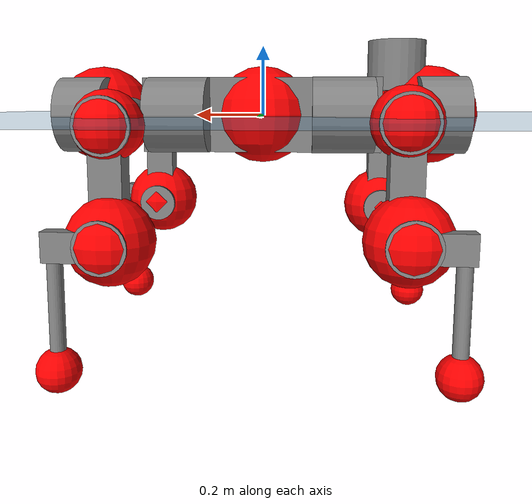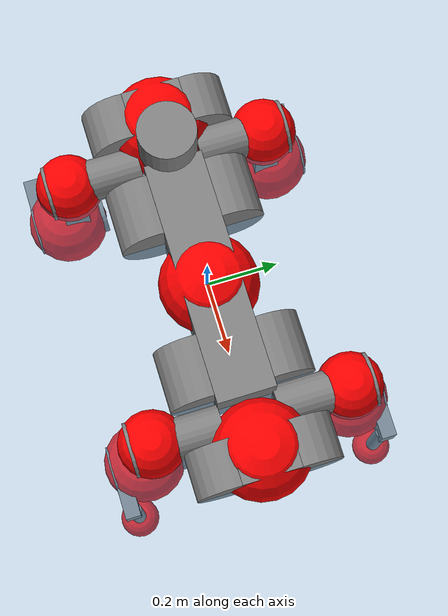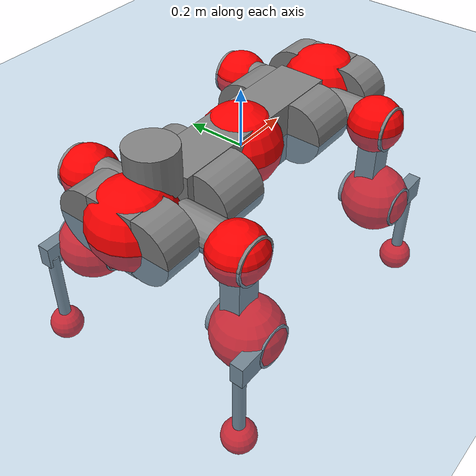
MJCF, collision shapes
<mujoco model="anymal_c">
  <compiler angle="radian" assetdir="assets" balanceinertia="true" inertiafromgeom="false"/>

  <option timestep="0.005" density="1.2" viscosity="2e-05"/>

  <size nkey="1"/>

  <visual>
    <quality shadowsize="8192"/>
    <map shadowclip="0.5"/>
  </visual>

  <default>
    <default class="/">
      <material specular="0" shininess="0.25"/>
      <geom contype="0" conaffinity="0" group="1" solref="-1000 -80"/>
      <site size="0.01 0.005 0.005" group="5"/>
      <general forcelimited="true" forcerange="-80 80" biastype="affine" gainprm="80" biasprm="0 -80 -2"/>
      <default class="anymal_c">
        <joint armature="0.01" damping="0.01" frictionloss="0.1"/>
        <default class="visual">
          <geom type="mesh" group="2"/>
          <default class="visual_zflip"/>
        </default>
        <default class="collision">
          <geom type="cylinder" group="3"/>
          <default class="foot">
            <geom size="0.03 0 0" type="sphere" condim="6" priority="1" friction="0.8 0.02 0.01" solimp="0.015 1 0.03"/>
          </default>
        </default>
      </default>
      <default class="reward_collision_sphere">
        <geom group="5" rgba="1 0 0 1"/>
      </default>
    </default>
  </default>

  <asset>
    <texture type="skybox" colorspace="auto" name="//unnamed_texture_0" builtin="gradient" rgb1="0.95 0.95 0.95" rgb2="0.95 0.95 0.95" width="100" height="600"/>
    <texture type="2d" colorspace="auto" name="texplane" builtin="checker" rgb1="0.345 0.575 0.748" rgb2="0.345 0.575 0.748" markrgb="1 1 1" width="512" height="512"/>
    <texture type="2d" colorspace="linear" name="base" file="base.png"/>
    <texture type="2d" colorspace="linear" name="top_shell" file="top_shell.png"/>
    <texture type="2d" colorspace="linear" name="bottom_shell" file="bottom_shell.png"/>
    <texture type="2d" colorspace="linear" name="remote" file="remote.png"/>
    <texture type="2d" colorspace="linear" name="hatch" file="hatch.png"/>
    <texture type="2d" colorspace="linear" name="handle" file="handle.png"/>
    <texture type="2d" colorspace="linear" name="face" file="face.png"/>
    <texture type="2d" colorspace="linear" name="battery" file="battery.png"/>
    <texture type="2d" colorspace="linear" name="lidar_cage" file="lidar_cage.png"/>
    <texture type="2d" colorspace="linear" name="depth_camera" file="depth_camera.png"/>
    <texture type="2d" colorspace="linear" name="wide_angle_camera" file="wide_angle_camera.png"/>
    <texture type="2d" colorspace="linear" name="lidar" file="lidar.png"/>
    <texture type="2d" colorspace="linear" name="drive" file="drive.png"/>
    <texture type="2d" colorspace="linear" name="hip_l" file="hip_l.png"/>
    <texture type="2d" colorspace="linear" name="shank_l" file="shank_l.png"/>
    <texture type="2d" colorspace="linear" name="foot" file="foot.png"/>
    <texture type="2d" colorspace="linear" name="thigh" file="thigh.png"/>
    <texture type="2d" colorspace="linear" name="shank_r" file="shank_r.png"/>
    <texture type="2d" colorspace="linear" name="hip_r" file="hip_r.png"/>
    <material name="MatPlane" class="/" texture="texplane" texuniform="true" texrepeat="2 2" specular="0.9" shininess="0.5"/>
    <material name="black_plastic" class="/" rgba="0.007 0.007 0.007 1"/>
    <material name="green" class="/" rgba="0.052 0.178 0.033 1"/>
    <material name="red" class="/" rgba="0.178 0.006 0.005 1"/>
    <material name="yellow" class="/" rgba="0.178 0.119 0.006 1"/>
    <material name="lwl" class="/" rgba="0.8 0.8 0.8 1"/>
    <material name="base" class="/" texture="base"/>
    <material name="top_shell" class="/" texture="top_shell"/>
    <material name="bottom_shell" class="/" texture="bottom_shell"/>
    <material name="hip_l" class="/" texture="hip_l"/>
    <material name="thigh" class="/" texture="thigh"/>
    <material name="shank_l" class="/" texture="shank_l"/>
    <material name="foot" class="/" texture="foot"/>
    <material name="hip_r" class="/" texture="hip_r"/>
    <material name="shank" class="/" texture="shank_r"/>
    <material name="hatch" class="/" texture="hatch"/>
    <material name="remote" class="/" texture="remote"/>
    <material name="handle" class="/" texture="handle"/>
    <material name="face" class="/" texture="face"/>
    <material name="depth_camera" class="/" texture="depth_camera"/>
    <material name="wide_angle_camera" class="/" texture="wide_angle_camera"/>
    <material name="battery" class="/" texture="battery"/>
    <material name="lidar_cage" class="/" texture="lidar_cage"/>
    <material name="lidar" class="/" texture="lidar"/>
    <material name="drive" class="/" texture="drive"/>
    <mesh name="base_0" class="/" file="base_0.obj"/>
    <mesh name="base_1" class="/" file="base_1.obj"/>
    <mesh name="base_2" class="/" file="base_2.obj"/>
    <mesh name="base_3" class="/" file="base_3.obj"/>
    <mesh name="base_4" class="/" file="base_4.obj"/>
    <mesh name="base_5" class="/" file="base_5.obj"/>
    <mesh name="top_shell" class="/" file="top_shell.obj"/>
    <mesh name="bottom_shell" class="/" file="bottom_shell.obj"/>
    <mesh name="remote" class="/" file="remote.obj"/>
    <mesh name="handle" class="/" file="handle.obj"/>
    <mesh name="face" class="/" file="face.obj"/>
    <mesh name="wide_angle_camera" class="/" file="wide_angle_camera.obj"/>
    <mesh name="depth_camera" class="/" file="depth_camera.obj"/>
    <mesh name="battery" class="/" file="battery.obj"/>
    <mesh name="lidar_cage" class="/" file="lidar_cage.obj"/>
    <mesh name="lidar" class="/" file="lidar.obj"/>
    <mesh name="drive" class="/" file="drive.obj"/>
    <mesh name="hip_l" class="/" file="hip_l.obj"/>
    <mesh name="thigh" class="/" file="thigh.obj"/>
    <mesh name="shank_l" class="/" file="shank_l.obj"/>
    <mesh name="foot" class="/" file="foot.obj"/>
    <mesh name="hip_r" class="/" file="hip_r.obj"/>
    <mesh name="hatch" class="/" file="hatch.obj"/>
    <mesh name="shank_r" class="/" file="shank_r.obj"/>
  </asset>

  <worldbody>
    <geom name="floor" class="/" size="100 100 0.125" type="plane" group="0" material="MatPlane"/>
    <light name="toplight_shadow" class="/" pos="0 0 5" dir="0.0990148 0.0990148 -0.990148" type="directional" ambient="0.04 0.04 0.04" diffuse="0.55 0.55 0.55" specular="0.12 0.12 0.12"/>
    <light name="toplight_fill" class="/" pos="0 0 5" dir="0.0990148 0.0990148 -0.990148" type="directional" castshadow="false" ambient="0.04 0.04 0.04" diffuse="0.3 0.3 0.3" specular="0.08 0.08 0.08"/>
    <body name="trunk" childclass="anymal_c" pos="-0.000100737 0.00528434 0.00203989" quat="1 0.000115501 -9.34751e-05 -1.29896e-05">
      <inertial pos="0.00285306 0.00601392 0.0482973" quat="0.458074 0.52238 0.510391 0.506743" mass="31.5833" diaginertia="0.874637 3.50088 0.268788"/>
      <joint name="//unnamed_joint_0" type="free" armature="0" damping="0" frictionloss="0"/>
      <geom name="//unnamed_geom_1" class="visual" material="green" mesh="base_0"/>
      <geom name="//unnamed_geom_2" class="visual" material="yellow" mesh="base_1"/>
      <geom name="//unnamed_geom_3" class="visual" material="red" mesh="base_2"/>
      <geom name="//unnamed_geom_4" class="visual" material="black_plastic" mesh="base_3"/>
      <geom name="//unnamed_geom_5" class="visual" material="lwl" mesh="base_4"/>
      <geom name="//unnamed_geom_6" class="visual" material="base" mesh="base_5"/>
      <geom name="trunk_1" class="collision" size="0.340126 0.0820994 0.105556" type="box"/>
      <geom name="trunk_2" class="collision" size="0.105556 0.0850315" pos="0.23055 0.0991597 0" quat="0.707107 0 0.707107 0"/>
      <geom name="trunk_3" class="collision" size="0.105556 0.0850315" pos="-0.23055 0.0991597 0" quat="0.707107 0 0.707107 0"/>
      <geom name="trunk_4" class="collision" size="0.105556 0.0850315" pos="0.23055 -0.0991597 0" quat="0.707107 0 0.707107 0"/>
      <geom name="trunk_5" class="collision" size="0.105556 0.0850315" pos="-0.23055 -0.0991597 0" quat="0.707107 0 0.707107 0"/>
      <geom name="//unnamed_geom_12" class="visual" material="top_shell" mesh="top_shell"/>
      <geom name="//unnamed_geom_13" class="visual" material="bottom_shell" mesh="bottom_shell"/>
      <geom name="//unnamed_geom_14" class="visual" material="remote" mesh="remote"/>
      <geom name="//unnamed_geom_15" class="visual" material="handle" mesh="handle"/>
      <geom name="//unnamed_geom_16" class="visual" pos="0.43937 0 0" quat="1 0 0 0" material="face" mesh="face"/>
      <geom name="trunk_6" class="collision" size="0.0645066 0.0820994 0.105556" pos="0.49767 0 0" type="box"/>
      <geom name="//unnamed_geom_18" class="collision" size="0.105556 0.0645066" pos="0.49767 0.0991597 0" quat="0.707107 0 0.707107 0"/>
      <geom name="//unnamed_geom_19" class="collision" size="0.105556 0.0645066" pos="0.49767 -0.0991597 0" quat="0.707107 0 0.707107 0"/>
      <geom name="//unnamed_geom_20" class="visual" pos="0.489348 0 -0.0302888" quat="0.965926 0 0.258819 0" material="depth_camera" mesh="depth_camera"/>
      <geom name="//unnamed_geom_21" class="visual" pos="0.54378 0 0.0155984" material="wide_angle_camera" mesh="wide_angle_camera"/>
      <geom name="//unnamed_geom_22" class="visual_zflip" pos="-0.43937 0 0" quat="0 0 0 1" material="face" mesh="face"/>
      <geom name="trunk_7" class="collision" size="0.0645066 0.0820994 0.105556" pos="-0.49767 0 0" quat="0 0 0 1" type="box"/>
      <geom name="//unnamed_geom_24" class="collision" size="0.105556 0.0645066" pos="-0.49767 -0.0991597 0" quat="0 -0.707107 0 0.707107"/>
      <geom name="//unnamed_geom_25" class="collision" size="0.105556 0.0645066" pos="-0.49767 0.0991597 0" quat="0 -0.707107 0 0.707107"/>
      <geom name="//unnamed_geom_26" class="visual" pos="-0.489348 0 -0.0302888" quat="0 -0.258819 0 0.965926" material="depth_camera" mesh="depth_camera"/>
      <geom name="//unnamed_geom_27" class="visual_zflip" pos="-0.54378 0 0.0155984" quat="0 0 0 1" material="wide_angle_camera" mesh="wide_angle_camera"/>
      <geom name="//unnamed_geom_28" class="visual" material="battery" mesh="battery"/>
      <geom name="//unnamed_geom_29" class="visual" pos="0 0.112989 0.0304064" quat="0.683013 -0.183013 0.183013 0.683013" material="depth_camera" mesh="depth_camera"/>
      <geom name="//unnamed_geom_30" class="visual" pos="0 -0.112989 0.0304064" quat="0.683013 0.183013 0.183013 -0.683013" material="depth_camera" mesh="depth_camera"/>
      <geom name="//unnamed_geom_31" class="visual" pos="-0.38584 0 0.0765853" quat="1 0 0 0" material="lidar_cage" mesh="lidar_cage"/>
      <geom name="trunk_8" class="collision" size="0.0820994 0.0703709" pos="-0.38584 0 0.139104"/>
      <geom name="//unnamed_geom_33" class="visual" pos="-0.38584 0.000140086 0.148169" quat="0.707107 0 0 -0.707107" material="lidar" mesh="lidar"/>
      <geom name="//unnamed_geom_34" class="visual" pos="0.317894 0.14719 6.46172e-09" quat="0.258819 0.965926 0 0" material="drive" mesh="drive"/>
      <geom name="//unnamed_geom_35" class="visual" pos="0.317894 -0.14719 -6.46172e-09" quat="0.258819 -0.965926 0 0" material="drive" mesh="drive"/>
      <geom name="//unnamed_geom_36" class="visual" pos="-0.317894 0.14719 -6.46172e-09" quat="0 0 0.965926 -0.258819" material="drive" mesh="drive"/>
      <geom name="//unnamed_geom_37" class="visual" pos="-0.317894 -0.14719 6.46172e-09" quat="0 0 -0.965926 -0.258819" material="drive" mesh="drive"/>
      <geom name="//unnamed_geom_38" class="visual" pos="0.12296 0 0.0760643" quat="1 0 0 0" material="hatch" mesh="hatch"/>
      <geom name="//unnamed_geom_39" class="reward_collision_sphere" size="0.140742"/>
      <geom name="//unnamed_geom_40" class="reward_collision_sphere" size="0.140742" pos="0.477 0 0"/>
      <geom name="//unnamed_geom_41" class="reward_collision_sphere" size="0.140742" pos="-0.477 0 0"/>
      <site name="imu" pos="0.238921 -0.00172638 0.0745666" size="0.0117285"/>
      <camera name="track" pos="0 -2.83313 0" quat="0.707107 0.707107 0 0" mode="trackcom"/>
      <camera name="ego_camera" pos="0.477 0 -0.0416791" quat="-0.5 -0.5 0.5 0.5"/>
      <body name="LF_HIP" pos="0.314155 0.137934 -0.00731206" quat="0.257903 0.966167 -0.00164896 0.00210423">
        <inertial pos="0.0583837 -0.0210086 -0.010534" quat="-0.130299 0.713395 -0.142409 0.673653" mass="4.68727" diaginertia="0.00782091 0.0304556 0.0039545"/>
        <joint name="LF_HAA" pos="0 0 0" axis="0.999988 2.30951e-05 0.00488791" range="-0.913921 0.444087" armature="0.0108429" damping="0.0332757" frictionloss="0.0942522"/>
        <geom name="//unnamed_geom_42" class="visual" pos="0 0.000380114 -6.24334e-05" quat="0.258819 -0.965926 0 0" material="hip_l" mesh="hip_l"/>
        <geom name="//unnamed_geom_43" class="visual" pos="0.063494 -0.0814982 -0.0442823" quat="0.183013 -0.683013 0.683013 0.183013" material="drive" mesh="drive"/>
        <geom name="//unnamed_geom_44" class="collision" size="0.0586424 0.0820994" pos="0.063494 -0.0169419 -0.00719485" quat="-0.353553 -0.612372 0.612372 -0.353553"/>
        <body name="LF_THIGH" pos="0.0639275 -0.112326 -0.0444113" quat="0.184184 -0.683012 0.682236 0.18473">
          <inertial pos="0.0282828 -0.00305082 -0.254298" quat="0.994045 -0.0211297 -0.0528481 0.0929227" mass="4.94633" diaginertia="0.042425 0.172894 0.0052362"/>
          <joint name="LF_HFE" pos="0 0 0" axis="0.999619 -0.0263542 -0.00820009" stiffness="0.0208746" range="-3.17443 2.98335" armature="0.00829059" damping="0.0202197" frictionloss="0.114223"/>
          <geom name="//unnamed_geom_45" class="visual" pos="-0.00709428 -1.11789e-05 0" quat="0.707107 0 0 -0.707107" material="thigh" mesh="thigh"/>
          <geom name="//unnamed_geom_46" class="collision" size="0.0762351 0.0469139" pos="0.0424 0 0" quat="0.5 0.5 -0.5 -0.5"/>
          <geom name="//unnamed_geom_47" class="collision" size="0.0439818 0.0351854 0.16574" pos="0.0318 0 -0.147246" quat="0.707107 0 0 -0.707107" type="box"/>
          <geom name="//unnamed_geom_48" class="visual" pos="0.106318 0 -0.296963" quat="1 0 0 0" material="drive" mesh="drive"/>
          <geom name="//unnamed_geom_49" class="collision" size="0.0586424 0.0820994" pos="0.032118 0 -0.296963" quat="0.707107 0 0.707107 0"/>
          <geom name="//unnamed_geom_50" class="reward_collision_sphere" size="0.0938278" pos="0.0265 0 0"/>
          <body name="LF_SHANK" pos="0.106177 0.00764629 -0.296609" quat="0.999999 -0.000672804 -0.000919323 2.8717e-05">
            <inertial pos="0.00212604 -0.086648 -0.0750854" quat="0.99292 -0.116023 -0.00100434 -0.0254308" mass="0.928613" diaginertia="0.0145012 0.0474064 0.00152517"/>
            <joint name="LF_KFE" pos="0 0 0" axis="0.999935 0.00883718 0.00714731" range="-2.96534 3.15263" armature="0.0137224" damping="0.0146833" frictionloss="0.120479"/>
            <geom name="//unnamed_geom_51" class="visual" pos="-0.00231329 -0.0123346 0" quat="0.707107 0 0 -0.707107" material="shank_l" mesh="shank_l"/>
            <geom name="LF_kfe_act" class="collision" size="0.0703709 0.023457" pos="0.0212 0 0" quat="0.5 0.5 -0.5 -0.5"/>
            <geom name="//unnamed_geom_53" class="collision" size="0.0674376 0.0395836 0.0222841" pos="0.0212 -0.0814512 0" quat="0.5 0.5 -0.5 -0.5" type="box"/>
            <geom name="//unnamed_geom_54" class="visual" pos="0.0138336 -0.128562 -0.352157" quat="0.382683 0 0 -0.92388" material="foot" mesh="foot"/>
            <geom name="LF_calf" class="collision" size="0.0205248 0.165667" pos="0.013833 -0.124587 -0.176078" quat="0.707107 0 0 -0.707107"/>
            <geom name="LF_foot" class="foot" size="0.0299303" pos="0.013833 -0.124587 -0.328712" quat="0.707107 0 0 -0.707107"/>
            <geom name="//unnamed_geom_57" class="reward_collision_sphere" size="0.117285" pos="-0.053 0 0"/>
            <geom name="//unnamed_geom_58" class="reward_collision_sphere" size="0.0586424" pos="0.013833 -0.124587 -0.328712"/>
            <site name="LF_foot" class="foot" pos="0.013833 -0.124587 -0.328712" quat="0.707107 0 0 -0.707107" size="0.0117285"/>
          </body>
        </body>
      </body>
      <body name="RF_HIP" pos="0.320547 -0.145083 0.000989274" quat="0.258815 -0.965927 0.000228019 -0.000183479">
        <inertial pos="0.0605651 0.0230013 -0.0075952" quat="0.128045 0.677298 0.133983 0.711984" mass="4.98806" diaginertia="0.00801354 0.0322908 0.00385137"/>
        <joint name="RF_HAA" pos="0 0 0" axis="0.999829 -0.00450447 -0.0179521" range="-0.490305 0.697367" armature="0.0119878" damping="0.0119224" frictionloss="0.115761"/>
        <geom name="//unnamed_geom_59" class="visual" pos="0 -0.000380111 -6.24332e-05" quat="0.258819 0.965926 0 0" material="hip_r" mesh="hip_r"/>
        <geom name="//unnamed_geom_60" class="visual" pos="0.063494 0.0814982 -0.0442823" quat="0.183013 0.683013 0.683013 -0.183013" material="drive" mesh="drive"/>
        <geom name="//unnamed_geom_61" class="collision" size="0.0586424 0.0820994" pos="0.063494 0.0169419 -0.00719485" quat="-0.353553 0.612372 0.612372 0.353553"/>
        <body name="RF_THIGH" pos="0.0558162 0.0933945 -0.0463213" quat="0.18364 0.682723 0.683013 -0.183464">
          <inertial pos="0.0345833 0.00930242 -0.257669" quat="0.991932 0.00858929 -0.0827157 0.095687" mass="4.32561" diaginertia="0.0383609 0.156758 0.00478908"/>
          <joint name="RF_HFE" pos="0 0 0" axis="0.999849 -0.0158919 -0.0069602" stiffness="0.00437167" range="-2.97969 3.13938" armature="0.0129538" damping="0.0136414" frictionloss="0.118374"/>
          <geom name="//unnamed_geom_62" class="visual" pos="-0.00709428 -1.11789e-05 0" quat="0.707107 0 0 -0.707107" material="thigh" mesh="thigh"/>
          <geom name="//unnamed_geom_63" class="collision" size="0.0762351 0.0469139" pos="0.0424 0 0" quat="0.5 0.5 0.5 0.5"/>
          <geom name="//unnamed_geom_64" class="collision" size="0.0439818 0.0351854 0.16574" pos="0.0318 0 -0.147246" quat="0.707107 0 0 0.707107" type="box"/>
          <geom name="//unnamed_geom_65" class="visual" pos="0.106318 0 -0.296963" quat="1 0 0 0" material="drive" mesh="drive"/>
          <geom name="//unnamed_geom_66" class="collision" size="0.0586424 0.0820994" pos="0.032118 0 -0.296963" quat="0.707107 0 0.707107 0"/>
          <geom name="//unnamed_geom_67" class="reward_collision_sphere" size="0.0938278" pos="0.0265 0 0"/>
          <body name="RF_SHANK" pos="0.114384 0.00292828 -0.293691" quat="0.999995 0.000155771 0.00217455 -0.00246809">
            <inertial pos="0.00529461 0.0865014 -0.0881385" quat="0.99131 0.125857 -0.00168634 0.0382301" mass="0.974594" diaginertia="0.0138084 0.0525195 0.00137812"/>
            <joint name="RF_KFE" pos="0 0 0" axis="0.998997 0.0158502 0.0418899" stiffness="0.00371658" range="-3.09834 3.14514" armature="0.00745775" damping="0" frictionloss="0.155125"/>
            <geom name="//unnamed_geom_68" class="visual" pos="-0.00231328 0.0123346 0" quat="0.707107 0 0 0.707107" material="shank" mesh="shank_r"/>
            <geom name="RF_kfe_act" class="collision" size="0.0703709 0.023457" pos="0.0212 0 0" quat="0.5 0.5 0.5 0.5"/>
            <geom name="//unnamed_geom_70" class="collision" size="0.0674376 0.0395836 0.0222841" pos="0.0212 0.0814512 0" quat="0.5 0.5 0.5 0.5" type="box"/>
            <geom name="//unnamed_geom_71" class="visual" pos="0.0138324 0.128562 -0.352157" quat="0.382683 0 0 0.92388" material="foot" mesh="foot"/>
            <geom name="RF_calf" class="collision" size="0.0205248 0.165667" pos="0.013833 0.124587 -0.176078" quat="0.707107 0 0 0.707107"/>
            <geom name="RF_foot" class="foot" size="0.0344381" pos="0.013833 0.124587 -0.328712" quat="0.707107 0 0 0.707107"/>
            <geom name="//unnamed_geom_74" class="reward_collision_sphere" size="0.117285" pos="-0.053 0 0"/>
            <geom name="//unnamed_geom_75" class="reward_collision_sphere" size="0.0586424" pos="0.013833 0.124587 -0.328712"/>
            <site name="RF_foot" class="foot" pos="0.013833 0.124587 -0.328712" quat="0.707107 0 0 0.707107" size="0.0117285"/>
          </body>
        </body>
      </body>
      <body name="LH_HIP" pos="-0.314967 0.146335 0.00368469" quat="-9.6242e-06 7.47941e-06 0.965926 -0.258818">
        <inertial pos="0.0608527 0.0276182 -0.0111109" quat="0.134891 0.680206 0.126544 0.709303" mass="4.4471" diaginertia="0.00770505 0.0276291 0.00396989"/>
        <joint name="LH_HAA" pos="0 0 0" axis="0.999997 -0.00191292 -0.00165209" range="-0.470886 0.740283" armature="0.0111683" damping="0.0238479" frictionloss="0.125672"/>
        <geom name="//unnamed_geom_76" class="visual" pos="0 -0.000380111 -6.24332e-05" quat="-0.258819 -0.965926 0 0" material="hip_r" mesh="hip_r"/>
        <geom name="//unnamed_geom_77" class="visual" pos="0.063494 0.0814982 -0.0442823" quat="0.183013 0.683013 0.683013 -0.183013" material="drive" mesh="drive"/>
        <geom name="//unnamed_geom_78" class="collision" size="0.0586424 0.0820994" pos="0.063494 0.0169419 -0.00719485" quat="-0.353553 0.612372 0.612372 0.353553"/>
        <body name="LH_THIGH" pos="0.0667534 0.0986308 -0.0355074" quat="0.183118 0.682753 0.683073 -0.183648">
          <inertial pos="0.0331589 -0.00223013 -0.247766" quat="0.992267 -0.0186151 -0.0796929 0.0933158" mass="4.33175" diaginertia="0.0398578 0.167156 0.00497529"/>
          <joint name="LH_HFE" pos="0 0 0" axis="0.999997 -0.000844082 0.00218619" range="-3.03534 3.07346" armature="0.0120689" damping="0.0386171" frictionloss="0.105317"/>
          <geom name="//unnamed_geom_79" class="visual" pos="-0.00709428 -1.11789e-05 0" quat="0.707107 0 0 -0.707107" material="thigh" mesh="thigh"/>
          <geom name="//unnamed_geom_80" class="collision" size="0.0762351 0.0469139" pos="0.0424 0 0" quat="0.5 0.5 -0.5 -0.5"/>
          <geom name="//unnamed_geom_81" class="collision" size="0.0439818 0.0351854 0.16574" pos="0.0318 0 -0.147246" quat="0.707107 0 0 -0.707107" type="box"/>
          <geom name="//unnamed_geom_82" class="visual" pos="0.106318 0 -0.296963" quat="1 0 0 0" material="drive" mesh="drive"/>
          <geom name="//unnamed_geom_83" class="collision" size="0.0586424 0.0820994" pos="0.032118 0 -0.296963" quat="0.707107 0 0.707107 0"/>
          <geom name="//unnamed_geom_84" class="reward_collision_sphere" size="0.0938278" pos="0.0265 0 0"/>
          <body name="LH_SHANK" pos="0.109431 0.00948047 -0.294922" quat="1 -1.78052e-06 -0.000481647 -0.000167313">
            <inertial pos="0.00376818 0.0861748 -0.0860479" quat="0.993403 0.111166 -0.00917042 0.0266155" mass="0.875465" diaginertia="0.0119729 0.0494151 0.00131088"/>
            <joint name="LH_KFE" pos="0 0 0" axis="0.9998 0.00332725 -0.0197062" range="-3.32149 3.24146" armature="0.0125599" damping="0.017762" frictionloss="0.110491"/>
            <geom name="//unnamed_geom_85" class="visual" pos="-0.00231328 0.0123346 0" quat="-0.707107 0 0 -0.707107" material="shank" mesh="shank_r"/>
            <geom name="LH_kfe_act" class="collision" size="0.0703709 0.023457" pos="0.0212 0 0" quat="0.5 0.5 -0.5 -0.5"/>
            <geom name="//unnamed_geom_87" class="collision" size="0.0674376 0.0395836 0.0222841" pos="0.0212 0.0814512 0" quat="0.5 0.5 -0.5 -0.5" type="box"/>
            <geom name="//unnamed_geom_88" class="visual" pos="0.0138324 0.128562 -0.352157" quat="-0.382683 0 0 -0.92388" material="foot" mesh="foot"/>
            <geom name="LH_calf" class="collision" size="0.0205248 0.165667" pos="0.013833 0.124587 -0.176078" quat="0.707107 0 0 -0.707107"/>
            <geom name="LH_foot" class="foot" size="0.0346298" pos="0.013833 0.124587 -0.328712" quat="0.707107 0 0 -0.707107"/>
            <geom name="//unnamed_geom_91" class="reward_collision_sphere" size="0.117285" pos="-0.053 0 0"/>
            <geom name="//unnamed_geom_92" class="reward_collision_sphere" size="0.0586424" pos="0.013833 0.124587 -0.328712"/>
            <site name="LH_foot" class="foot" pos="0.013833 0.124587 -0.328712" quat="0.707107 0 0 -0.707107" size="0.0117285"/>
          </body>
        </body>
      </body>
      <body name="RH_HIP" pos="-0.317608 -0.150466 -0.00034996" quat="-0.00245264 0.000140212 -0.965382 -0.260827">
        <inertial pos="0.0607285 -0.028058 -0.00491664" quat="-0.127673 0.709714 -0.130934 0.68034" mass="4.4284" diaginertia="0.00709313 0.0269014 0.00352576"/>
        <joint name="RH_HAA" pos="0 0 0" axis="0.999402 -0.00517588 0.0341974" range="-0.761702 0.643121" armature="0.0119726" damping="0.0103415" frictionloss="0.129097"/>
        <geom name="//unnamed_geom_93" class="visual" pos="0 0.000380114 -6.24334e-05" quat="-0.258819 0.965926 0 0" material="hip_l" mesh="hip_l"/>
        <geom name="//unnamed_geom_94" class="visual" pos="0.063494 -0.0814982 -0.0442823" quat="-0.183013 0.683013 -0.683013 -0.183013" material="drive" mesh="drive"/>
        <geom name="//unnamed_geom_95" class="collision" size="0.0586424 0.0820994" pos="0.063494 -0.0169419 -0.00719485" quat="0.353553 0.612372 -0.612372 0.353553"/>
        <body name="RH_THIGH" pos="0.0653162 -0.107502 -0.0450219" quat="-0.181524 0.685123 -0.681917 -0.180677">
          <inertial pos="0.0323763 0.00746149 -0.259019" quat="0.992836 -0.00266238 -0.0859119 0.0830035" mass="5.25972" diaginertia="0.0431024 0.180741 0.0053505"/>
          <joint name="RH_HFE" pos="0 0 0" axis="0.999241 0.0384734 -0.00608546" stiffness="0.00235886" range="-3.10577 3.08854" armature="0.0106693" damping="0.0127623" frictionloss="0.126412"/>
          <geom name="//unnamed_geom_96" class="visual" pos="-0.00709428 -1.11789e-05 0" quat="0.707107 0 0 -0.707107" material="thigh" mesh="thigh"/>
          <geom name="//unnamed_geom_97" class="collision" size="0.0762351 0.0469139" pos="0.0424 0 0" quat="0.5 0.5 0.5 0.5"/>
          <geom name="//unnamed_geom_98" class="collision" size="0.0439818 0.0351854 0.16574" pos="0.0318 0 -0.147246" quat="0.707107 0 0 0.707107" type="box"/>
          <geom name="//unnamed_geom_99" class="visual" pos="0.106318 0 -0.296963" quat="1 0 0 0" material="drive" mesh="drive"/>
          <geom name="//unnamed_geom_100" class="collision" size="0.0586424 0.0820994" pos="0.032118 0 -0.296963" quat="0.707107 0 0.707107 0"/>
          <geom name="//unnamed_geom_101" class="reward_collision_sphere" size="0.0938278" pos="0.0265 0 0"/>
          <body name="RH_SHANK" pos="0.116718 0.00139006 -0.295901" quat="1 0.000548473 -0.000214051 0.000487358">
            <inertial pos="-0.00394029 -0.0870414 -0.0844898" quat="0.992794 -0.117172 -0.00387975 -0.0248117" mass="0.936327" diaginertia="0.0124651 0.053058 0.00141352"/>
            <joint name="RH_KFE" pos="0 0 0" axis="0.999211 -0.0369983 0.0144615" stiffness="0.0104578" range="-3.01327 2.98345" armature="0.0161628" damping="0.00888602" frictionloss="0.122177"/>
            <geom name="//unnamed_geom_102" class="visual" pos="-0.00231329 -0.0123346 0" quat="0.707107 0 0 -0.707107" material="shank_l" mesh="shank_l"/>
            <geom name="RH_kfe_act" class="collision" size="0.0703709 0.023457" pos="0.0212 0 0" quat="0.5 0.5 0.5 0.5"/>
            <geom name="//unnamed_geom_104" class="collision" size="0.0674376 0.0395836 0.0222841" pos="0.0212 -0.0814512 0" quat="0.5 0.5 0.5 0.5" type="box"/>
            <geom name="//unnamed_geom_105" class="visual" pos="0.0138336 -0.128562 -0.352157" quat="0.382683 0 0 -0.92388" material="foot" mesh="foot"/>
            <geom name="RH_calf" class="collision" size="0.0205248 0.165667" pos="0.013833 -0.124587 -0.176078" quat="0.707107 0 0 0.707107"/>
            <geom name="RH_foot" class="foot" size="0.0380458" pos="0.013833 -0.124587 -0.328712" quat="0.707107 0 0 0.707107"/>
            <geom name="//unnamed_geom_108" class="reward_collision_sphere" size="0.117285" pos="-0.053 0 0"/>
            <geom name="//unnamed_geom_109" class="reward_collision_sphere" size="0.0586424" pos="0.013833 -0.124587 -0.328712"/>
            <site name="RH_foot" class="foot" pos="0.013833 -0.124587 -0.328712" quat="0.707107 0 0 0.707107" size="0.0117285"/>
          </body>
        </body>
      </body>
    </body>
  </worldbody>

  <contact>
    <pair class="/" geom1="floor" geom2="LF_foot" name="//unnamed_contact_0"/>
    <pair class="/" geom1="floor" geom2="RF_foot" name="//unnamed_contact_1"/>
    <pair class="/" geom1="floor" geom2="LH_foot" name="//unnamed_contact_2"/>
    <pair class="/" geom1="floor" geom2="RH_foot" name="//unnamed_contact_3"/>
  </contact>

  <actuator>
    <general name="LF_HAA" class="/" joint="LF_HAA" forcerange="-60.0552 60.0552" gainprm="75.5166" biasprm="0 -75.5166 -2.32106"/>
    <general name="LF_HFE" class="/" joint="LF_HFE" forcerange="-107.547 107.547" gainprm="75.5166" biasprm="0 -75.5166 -2.32106"/>
    <general name="LF_KFE" class="/" joint="LF_KFE" forcerange="-92.6294 92.6294" gainprm="75.5166" biasprm="0 -75.5166 -2.32106"/>
    <general name="RF_HAA" class="/" joint="RF_HAA" forcerange="-66.0017 66.0017" gainprm="75.5166" biasprm="0 -75.5166 -2.32106"/>
    <general name="RF_HFE" class="/" joint="RF_HFE" forcerange="-66.04 66.04" gainprm="75.5166" biasprm="0 -75.5166 -2.32106"/>
    <general name="RF_KFE" class="/" joint="RF_KFE" forcerange="-80.4358 80.4358" gainprm="75.5166" biasprm="0 -75.5166 -2.32106"/>
    <general name="LH_HAA" class="/" joint="LH_HAA" forcerange="-90.9978 90.9978" gainprm="75.5166" biasprm="0 -75.5166 -2.32106"/>
    <general name="LH_HFE" class="/" joint="LH_HFE" forcerange="-102.081 102.081" gainprm="75.5166" biasprm="0 -75.5166 -2.32106"/>
    <general name="LH_KFE" class="/" joint="LH_KFE" forcerange="-104.091 104.091" gainprm="75.5166" biasprm="0 -75.5166 -2.32106"/>
    <general name="RH_HAA" class="/" joint="RH_HAA" forcerange="-124.492 124.492" gainprm="75.5166" biasprm="0 -75.5166 -2.32106"/>
    <general name="RH_HFE" class="/" joint="RH_HFE" forcerange="-88.2662 88.2662" gainprm="75.5166" biasprm="0 -75.5166 -2.32106"/>
    <general name="RH_KFE" class="/" joint="RH_KFE" forcerange="-95.6784 95.6784" gainprm="75.5166" biasprm="0 -75.5166 -2.32106"/>
  </actuator>

  <sensor>
    <gyro site="imu" name="imu_angular_velocity"/>
    <velocimeter site="imu" name="imu_linear_velocity"/>
    <framelinvel objtype="site" objname="LF_foot" name="LF_foot_global_linear_velocity"/>
    <framelinvel objtype="site" objname="RF_foot" name="RF_foot_global_linear_velocity"/>
    <framelinvel objtype="site" objname="LH_foot" name="LH_foot_global_linear_velocity"/>
    <framelinvel objtype="site" objname="RH_foot" name="RH_foot_global_linear_velocity"/>
  </sensor>

  <keyframe>
    <key name="home" qpos="0 0 0.55 1 0 0 0 0 0.4 -0.8 0 -0.4 0.8 0 -0.4 0.8 0 0.4 -0.8"/>
  </keyframe>
</mujoco>
